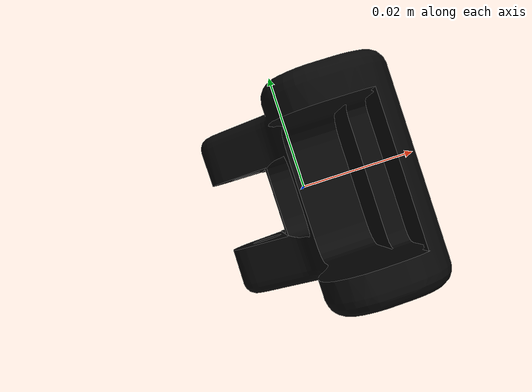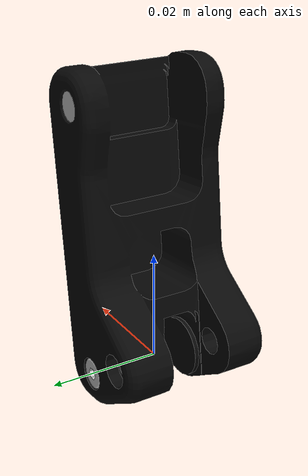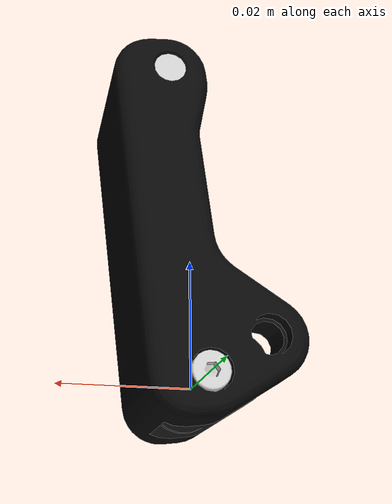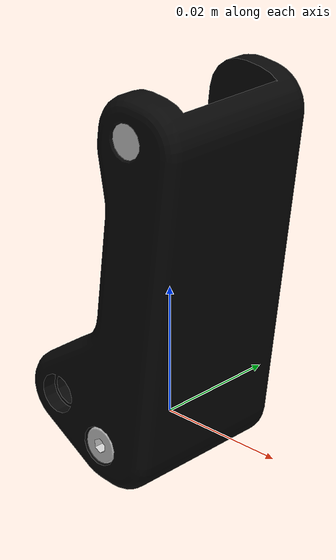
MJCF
<mujoco model="left_finger">
  <default>
    <default class="visual">
      <geom group="2" type="mesh" contype="0" conaffinity="0"/>
    </default>
    <default class="collision">
      <geom group="3" type="mesh"/>
    </default>
  </default>
  <asset>
    <material name="black.001" specular="0.5" shininess="0.25" rgba="0.031505 0.031505 0.031505 1.000000"/>
    <material name="grey.003" specular="0.5" shininess="0.25" rgba="0.799103 0.799103 0.799103 1.000000"/>
    <mesh file="left_finger_0.obj"/>
    <mesh file="left_finger_1.obj"/>
  </asset>
  <worldbody>
    <body name="left_finger">
      <geom mesh="left_finger_0" material="black.001" class="visual"/>
      <geom mesh="left_finger_1" material="grey.003" class="visual"/>
      <geom mesh="left_finger_0" class="collision"/>
      <geom mesh="left_finger_1" class="collision"/>
    </body>
  </worldbody>
</mujoco>
